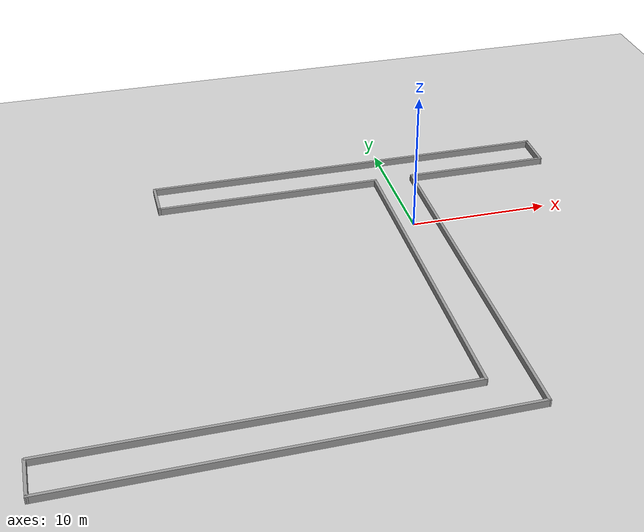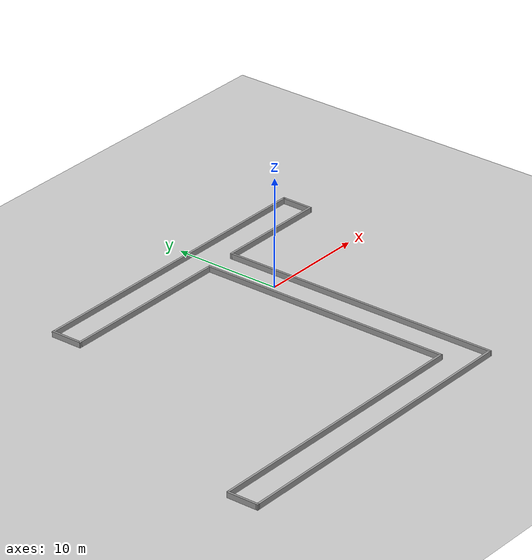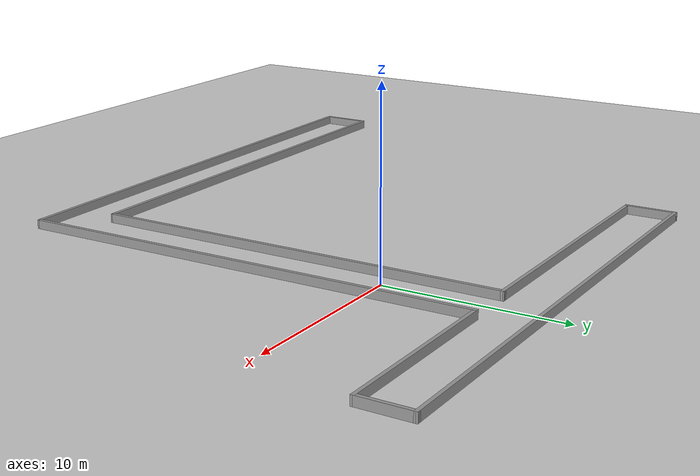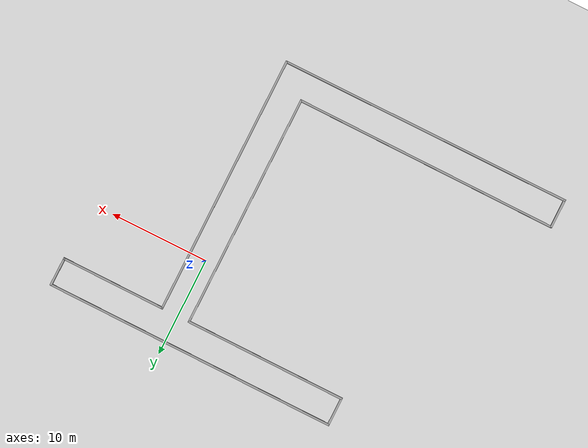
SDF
<sdf version="1.4">
 <world name="default">
  <light name="sun" type="directional">
   <pose>0 0 10 0 -0 0</pose>
   <diffuse>0.8 0.8 0.8 1</diffuse>
   <specular>0.2 0.2 0.2 1</specular>
   <attenuation>
    <range>1000</range>
    <constant>0.9</constant>
    <linear>0.01</linear>
    <quadratic>0.001</quadratic>
   </attenuation>
   <direction>-0.5 0.1 -0.9</direction>
  </light>
  <model name="ground_plane">
   <static>1</static>
   <link name="link">
    <collision name="collision">
     <geometry><plane><normal>0 0 1</normal><size>100 100</size></plane></geometry>
     <surface><friction><ode><mu>100</mu><mu2>50</mu2></ode></friction></surface>
    </collision>
    <visual name="visual">
     <cast_shadows>0</cast_shadows>
     <geometry><plane><normal>0 0 1</normal><size>100 100</size></plane></geometry>
     <material>
      <script><uri>file://media/materials/scripts/gazebo.material</uri><name>Gazebo/Grey</name></script>
     </material>
    </visual>
    <velocity_decay><linear>0</linear><angular>0</angular></velocity_decay>
   </link>
  </model>
  <physics type="ode">
   <max_step_size>0.01</max_step_size>
   <real_time_factor>1</real_time_factor>
   <real_time_update_rate>100</real_time_update_rate>
   <gravity>0 0 -9.8</gravity>
  </physics>
  <scene><ambient>0.4 0.4 0.4 1</ambient><background>0.7 0.7 0.7 1</background><shadows>1</shadows></scene>
  <model name="Project1_hallways">
   <link name="Wall_0">
    <collision name="Wall_0_Collision">
     <geometry><box><size>27 0.2 0.5</size></box></geometry>
     <pose>0 0 0.25 0 -0 0</pose>
    </collision>
    <visual name="Wall_0_Visual">
     <pose>0 0 0.25 0 -0 0</pose>
     <geometry><box><size>27 0.2 0.5</size></box></geometry>
     <material>
      <script><uri>file://media/materials/scripts/gazebo.material</uri><name>Gazebo/Grey</name></script>
     </material>
    </visual>
    <velocity_decay><linear>0</linear><angular>0</angular></velocity_decay>
    <pose>-8.61849 -21.862 0 0 -0 0</pose>
   </link>
   <link name="Wall_1">
    <collision name="Wall_1_Collision">
     <geometry><box><size>23.9715 0.2 0.5</size></box></geometry>
     <pose>0 0 0.25 0 -0 0</pose>
    </collision>
    <visual name="Wall_1_Visual">
     <pose>0 0 0.25 0 -0 0</pose>
     <geometry><box><size>23.9715 0.2 0.5</size></box></geometry>
     <material>
      <script><uri>file://media/materials/scripts/gazebo.material</uri><name>Gazebo/Grey</name></script>
     </material>
    </visual>
    <velocity_decay><linear>0</linear><angular>0</angular></velocity_decay>
    <pose>4.79575 -9.97621 0 0 -0 1.5696</pose>
   </link>
   <link name="Wall_2">
    <collision name="Wall_2_Collision">
     <geometry><box><size>16.574 0.2 0.5</size></box></geometry>
     <pose>0 0 0.25 0 -0 0</pose>
    </collision>
    <visual name="Wall_2_Visual">
     <pose>0 0 0.25 0 -0 0</pose>
     <geometry><box><size>16.574 0.2 0.5</size></box></geometry>
     <material>
      <script><uri>file://media/materials/scripts/gazebo.material</uri><name>Gazebo/Grey</name></script>
     </material>
    </visual>
    <velocity_decay><linear>0</linear><angular>0</angular></velocity_decay>
    <pose>-3.37699 1.90954 0 0 -0 3.14159</pose>
   </link>
   <link name="Wall_3">
    <collision name="Wall_3_Collision">
     <geometry><box><size>3 0.2 0.5</size></box></geometry>
     <pose>0 0 0.25 0 -0 0</pose>
    </collision>
    <visual name="Wall_3_Visual">
     <pose>0 0 0.25 0 -0 0</pose>
     <geometry><box><size>3 0.2 0.5</size></box></geometry>
     <material>
      <script><uri>file://media/materials/scripts/gazebo.material</uri><name>Gazebo/Grey</name></script>
     </material>
    </visual>
    <velocity_decay><linear>0</linear><angular>0</angular></velocity_decay>
    <pose>-11.564 3.30954 0 0 -0 1.5708</pose>
   </link>
   <link name="Wall_4">
    <collision name="Wall_4_Collision">
     <geometry><box><size>30 0.2 0.5</size></box></geometry>
     <pose>0 0 0.25 0 -0 0</pose>
    </collision>
    <visual name="Wall_4_Visual">
     <pose>0 0 0.25 0 -0 0</pose>
     <geometry><box><size>30 0.2 0.5</size></box></geometry>
     <material>
      <script><uri>file://media/materials/scripts/gazebo.material</uri><name>Gazebo/Grey</name></script>
     </material>
    </visual>
    <velocity_decay><linear>0</linear><angular>0</angular></velocity_decay>
    <pose>3.33601 4.70725 0 0 0 -0.000154</pose>
   </link>
   <link name="Wall_5">
    <collision name="Wall_5_Collision">
     <geometry><box><size>2.99464 0.2 0.5</size></box></geometry>
     <pose>0 0 0.25 0 -0 0</pose>
    </collision>
    <visual name="Wall_5_Visual">
     <pose>0 0 0.25 0 -0 0</pose>
     <geometry><box><size>2.99464 0.2 0.5</size></box></geometry>
     <material>
      <script><uri>file://media/materials/scripts/gazebo.material</uri><name>Gazebo/Grey</name></script>
     </material>
    </visual>
    <velocity_decay><linear>0</linear><angular>0</angular></velocity_decay>
    <pose>18.225 3.30769 0 0 0 -1.57868</pose>
   </link>
   <link name="Wall_6">
    <collision name="Wall_6_Collision">
     <geometry><box><size>10.708 0.2 0.5</size></box></geometry>
     <pose>0 0 0.25 0 -0 0</pose>
    </collision>
    <visual name="Wall_6_Visual">
     <pose>0 0 0.25 0 -0 0</pose>
     <geometry><box><size>10.708 0.2 0.5</size></box></geometry>
     <material>
      <script><uri>file://media/materials/scripts/gazebo.material</uri><name>Gazebo/Grey</name></script>
     </material>
    </visual>
    <velocity_decay><linear>0</linear><angular>0</angular></velocity_decay>
    <pose>12.96 1.91041 0 0 -0 3.14159</pose>
   </link>
   <link name="Wall_7">
    <collision name="Wall_7_Collision">
     <geometry><box><size>26.6644 0.2 0.5</size></box></geometry>
     <pose>0 0 0.25 0 -0 0</pose>
    </collision>
    <visual name="Wall_7_Visual">
     <pose>0 0 0.25 0 -0 0</pose>
     <geometry><box><size>26.6644 0.2 0.5</size></box></geometry>
     <material>
      <script><uri>file://media/materials/scripts/gazebo.material</uri><name>Gazebo/Grey</name></script>
     </material>
    </visual>
    <velocity_decay><linear>0</linear><angular>0</angular></velocity_decay>
    <pose>7.706 -11.3218 0 0 0 -1.5708</pose>
   </link>
   <link name="Wall_8">
    <collision name="Wall_8_Collision">
     <geometry><box><size>30.0004 0.2 0.5</size></box></geometry>
     <pose>0 0 0.25 0 -0 0</pose>
    </collision>
    <visual name="Wall_8_Visual">
     <pose>0 0 0.25 0 -0 0</pose>
     <geometry><box><size>30.0004 0.2 0.5</size></box></geometry>
     <material>
      <script><uri>file://media/materials/scripts/gazebo.material</uri><name>Gazebo/Grey</name></script>
     </material>
    </visual>
    <velocity_decay><linear>0</linear><angular>0</angular></velocity_decay>
    <pose>-7.194 -24.6358 0 0 0 -3.1361</pose>
   </link>
   <link name="Wall_9">
    <collision name="Wall_9_Collision">
     <geometry><box><size>3 0.2 0.5</size></box></geometry>
     <pose>0 0 0.25 0 -0 0</pose>
    </collision>
    <visual name="Wall_9_Visual">
     <pose>0 0 0.25 0 -0 0</pose>
     <geometry><box><size>3 0.2 0.5</size></box></geometry>
     <material>
      <script><uri>file://media/materials/scripts/gazebo.material</uri><name>Gazebo/Grey</name></script>
     </material>
    </visual>
    <velocity_decay><linear>0</linear><angular>0</angular></velocity_decay>
    <pose>-22.094 -23.3177 0 0 -0 1.57078</pose>
   </link>
   <static>1</static>
   <pose>-6 4 0 0 -0 0</pose>
  </model>
 </world>
</sdf>
